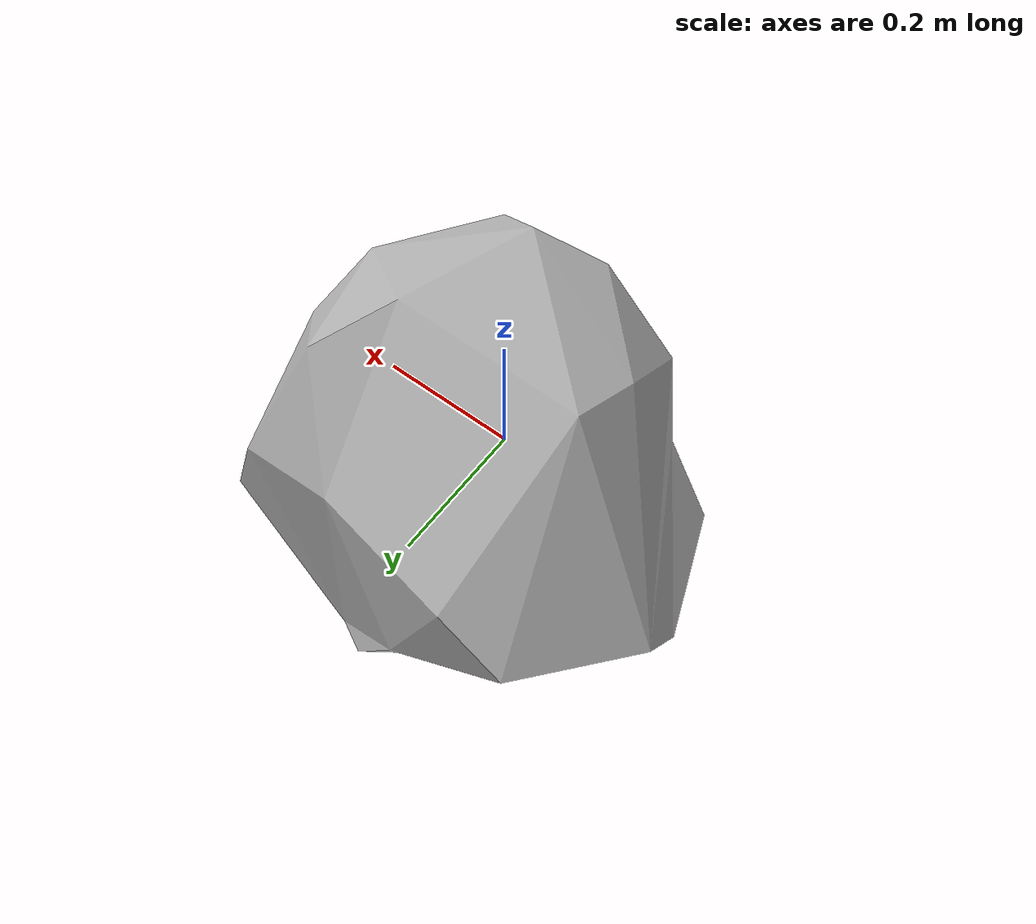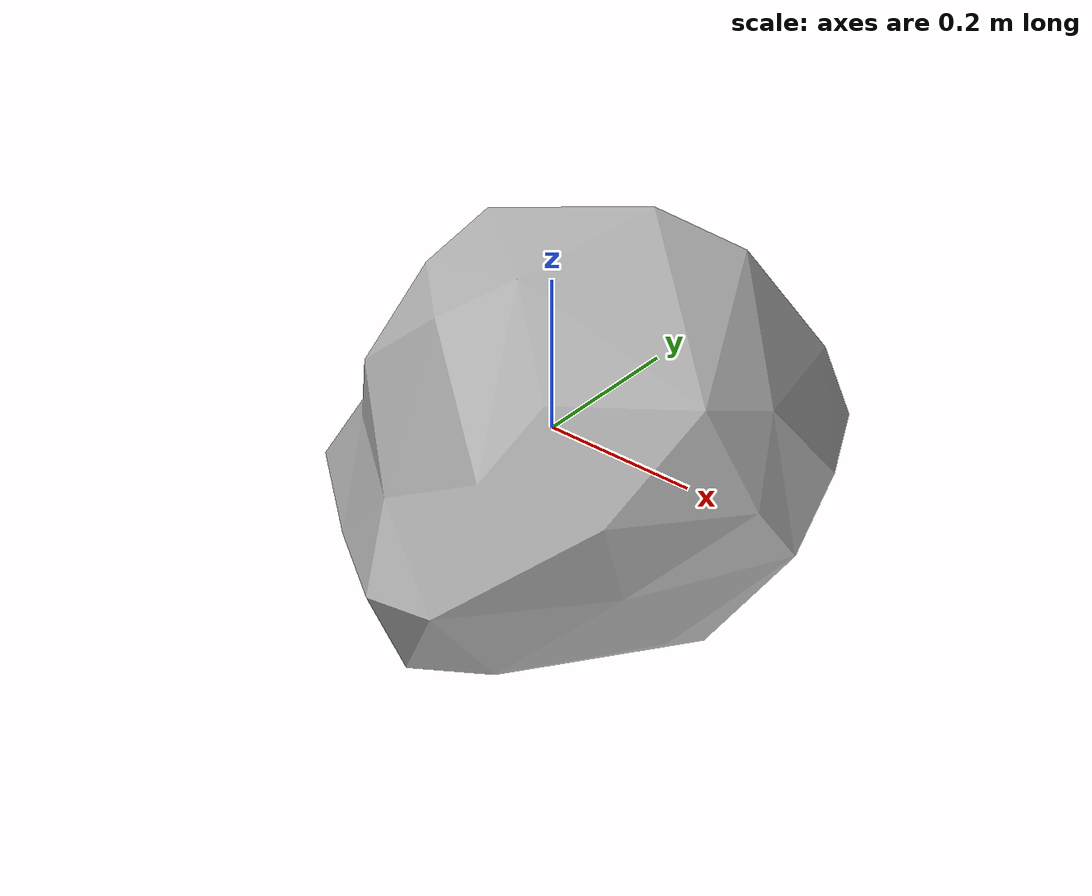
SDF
<?xml version="1.0" ?>
<sdf version="1.6">
  <model name="rock3">
    <static>true</static> <!-- Set to true if the model should not move -->
    <pose>0 0 0 0 0 0</pose>

    <!--z offset is 0.2 for full scale-->

    <link name="link">
      <collision name="rock3_collision">
        <geometry>
          <mesh>
            <uri>model://meshes/rock3.dae</uri>
          </mesh>
        </geometry>
      </collision>
      <visual name="rock3_visual">
        <geometry>
          <mesh>
            <uri>model://meshes/rock3.dae</uri>
          </mesh>
        </geometry>
        <material>
          <script>
            <uri>model://materials/scripts/sand_pebbles.material</uri>
            <name>custom_ground/Image</name>
          </script>
        </material>
      </visual>
    </link>
  </model>
</sdf>
